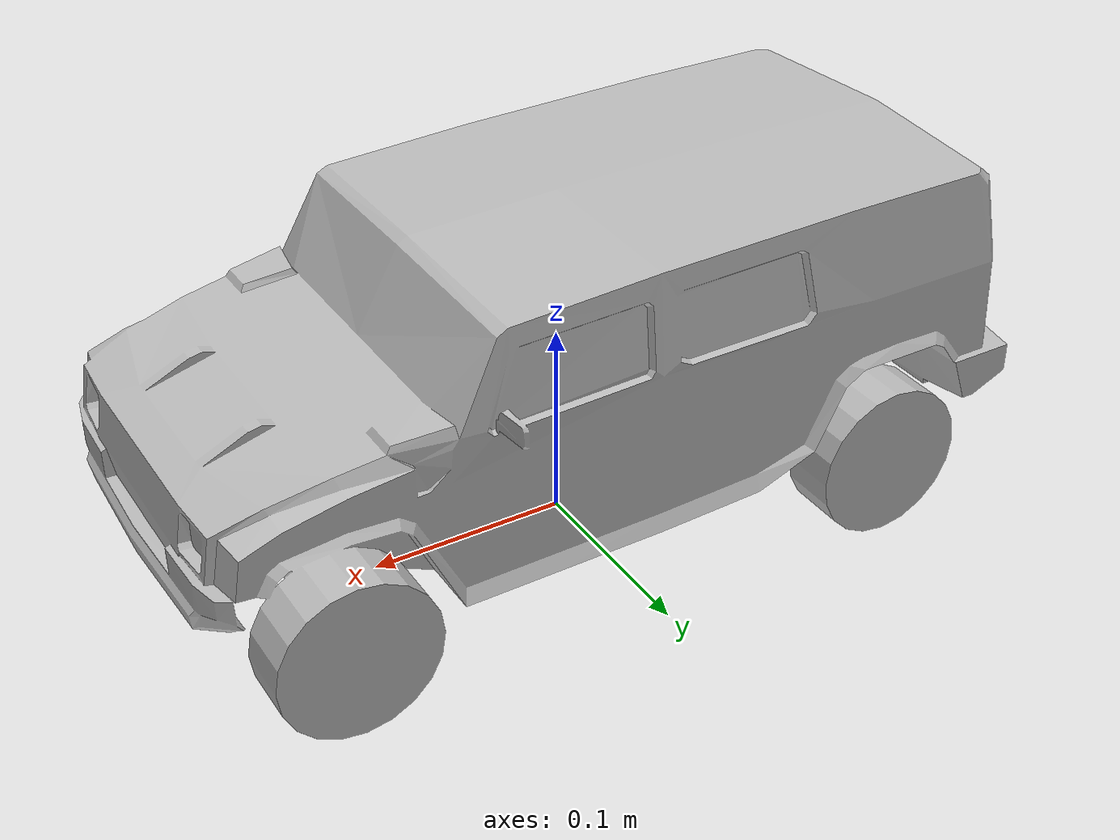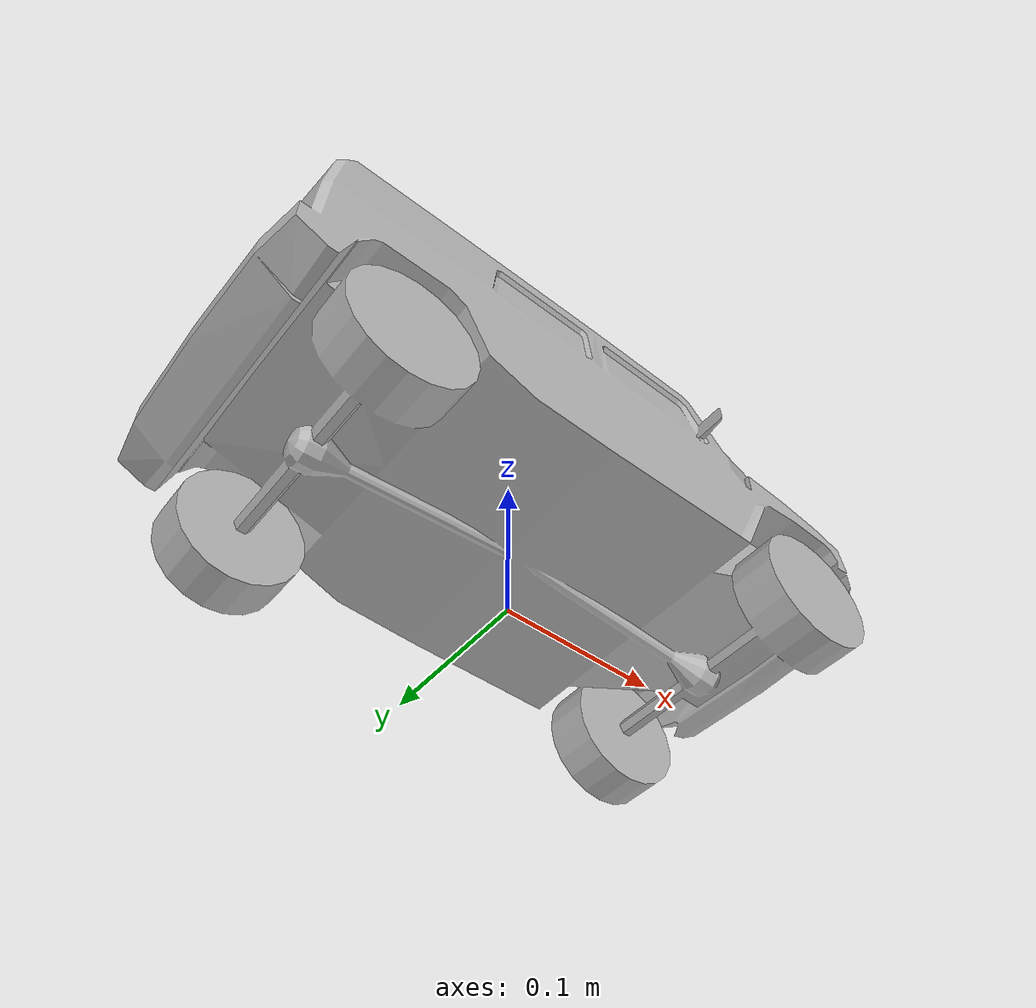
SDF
<?xml version='1.0'?>
<sdf version='1.6'>
  <model name='suv'>
    <pose>0 0 0 0 0 -1.57079632679</pose>
    <static>true</static>
    <link name='suv'>
      <collision name='collision'>
        <geometry>
          <box>
              <size>0.3 0.15 0.18</size>
          </box>
        </geometry>
      </collision>
      <visual name='visual'>
        <geometry>
          <mesh>
            <scale>0.005 0.005 0.005</scale>
            <uri>model://suv/suv.dae</uri>
          </mesh>
        </geometry>
      </visual>
    </link>
  </model>
</sdf>
